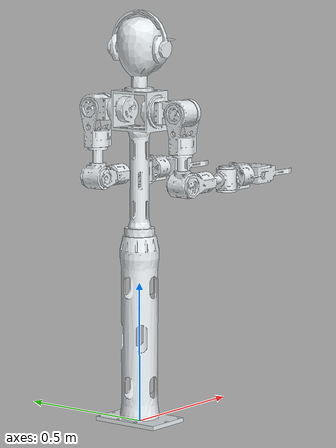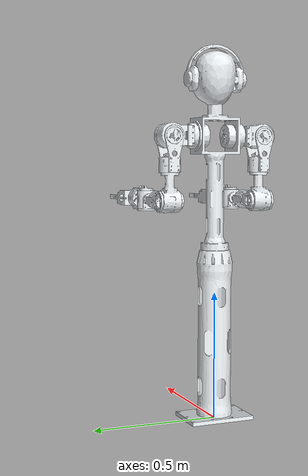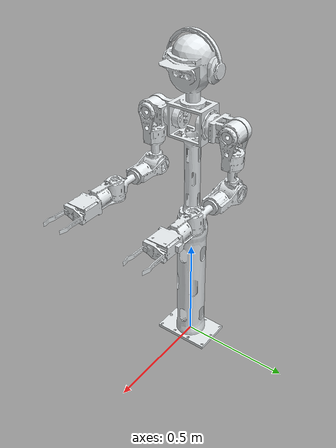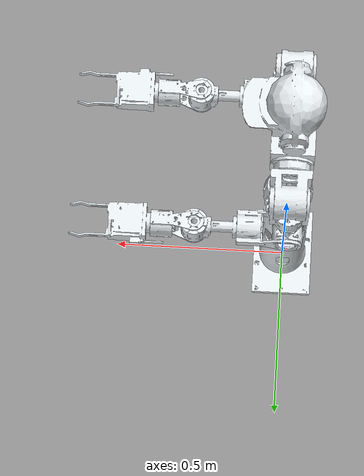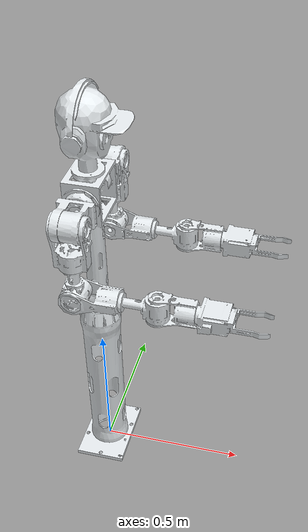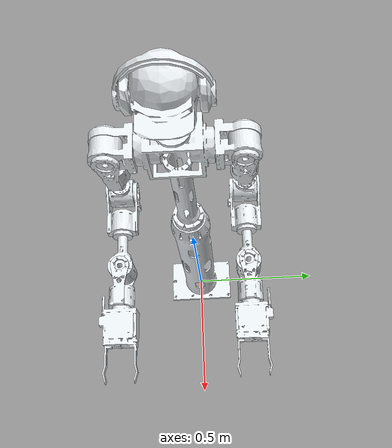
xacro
<?xml version="1.0"?>
<robot xmlns:xacro="http://www.ros.org/wiki/xacro" name="HRB3Q-LC">
  <xacro:arg name="gtn_library_path" default="$(find x1_coffee_integration)/vendor/gtn/libgxn_x64.so"/>
  <xacro:arg name="gtn_config_path" default="$(find x1_coffee_integration)/vendor/gtn/gtn_core1.cfg"/>
  <xacro:arg name="ecat_config_path" default="$(find x1_coffee_integration)/vendor/gtn/Gecat_15axis.eni"/>
  <xacro:arg name="initial_positions_file" default="$(find x1_coffee_integration)/config/initial_positions.yaml"/>
  <xacro:arg name="zero_offsets_file" default="$(find x1_coffee_integration)/config/zero_offsets.yaml"/>
  <xacro:arg name="motion_enabled" default="false"/>
  <xacro:arg name="drives_enabled" default="false"/>
  <xacro:arg name="hardware_profile" default="coffee_15_no_slide"/>
  <xacro:arg name="ethercat_ifname" default="eno1"/>
  <xacro:arg name="use_fake_hardware" default="false"/>
  <xacro:arg name="fake_sensor_commands" default="false"/>
  <!-- Reuses the established coffee geometry and selects real/fake ros2_control explicitly. -->
  <xacro:include filename="$(find arm_describle)/urdf/HRB3Q-LC.urdf"/>
  <xacro:include filename="$(find x1_coffee_ros2_control)/urdf/x1_coffee.ros2_control.xacro"/>
  <xacro:x1_coffee_ros2_control
    name="X1CoffeeRealSystem"
    use_fake_hardware="$(arg use_fake_hardware)"
    fake_sensor_commands="$(arg fake_sensor_commands)"
    gtn_library_path="$(arg gtn_library_path)"
    gtn_config_path="$(arg gtn_config_path)"
    ecat_config_path="$(arg ecat_config_path)"
    motion_enabled="$(arg motion_enabled)"
    drives_enabled="$(arg drives_enabled)"
    ethercat_ifname="$(arg ethercat_ifname)"
    hardware_profile="$(arg hardware_profile)"
    initial_positions_file="$(arg initial_positions_file)"
    zero_offsets_file="$(arg zero_offsets_file)"/>
</robot>

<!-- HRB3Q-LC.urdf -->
<robot
  name="HRB3Q-LC">
  <link name="dummy_root"/>
  <joint name="dummy_to_base" type="fixed">
    <parent link="dummy_root"/>
    <child link="Waist"/>
    <origin xyz="-1.83897483853e-08 0.000190909999114 0" rpy="0 0 -1.5707"/>
  </joint>
  <link
    name="Waist">
    <inertial>
      <origin
        xyz="-1.73788845931125E-06 4.09843367266127E-06 0.370335800513476"
        rpy="0 0 0" />
      <mass
        value="6.72739654383945" />
      <inertia
        ixx="0.128578003326412"
        ixy="-5.48683858854331E-07"
        ixz="-4.67345241719499E-07"
        iyy="0.133920864364366"
        iyz="9.59504113242137E-07"
        izz="0.0301155657919325" />
    </inertial>
    <visual>
      <origin
        xyz="0 0 0"
        rpy="0 0 0" />
      <geometry>
        <mesh
          filename="package://arm_describle/meshes0408/Waist.STL" />
      </geometry>
      <material
        name="">
        <color
          rgba="0.898039215686275 0.917647058823529 0.929411764705882 1" />
      </material>
    </visual>
    <collision>
      <origin
        xyz="0 0 0"
        rpy="0 0 0" />
      <geometry>
        <mesh
          filename="package://arm_describle/meshes0408/Waist.STL" />
      </geometry>
    </collision>
  </link>
  <link
    name="Body">
    <inertial>
      <origin
        xyz="4.47428434235259E-06 0.0054149465977954 0.486320399815704"
        rpy="0 0 0" />
      <mass
        value="8.16174511256408" />
      <inertia
        ixx="0.0252929798960977"
        ixy="-1.0950663478297E-06"
        ixz="-4.15230011161103E-08"
        iyy="0.0256844268395386"
        iyz="-0.000316649090724612"
        izz="0.0170534363864611" />
    </inertial>
    <visual>
      <origin
        xyz="0 0 0"
        rpy="0 0 0" />
      <geometry>
        <mesh
          filename="package://arm_describle/meshes0408/Body.STL" />
      </geometry>
      <material
        name="">
        <color
          rgba="0.898039215686275 0.917647058823529 0.929411764705882 1" />
      </material>
    </visual>
    <collision>
      <origin
        xyz="0 0 0"
        rpy="0 0 0" />
      <geometry>
        <mesh
          filename="package://arm_describle/meshes0408/Body.STL" />
      </geometry>
    </collision>
  </link>
  <joint
    name="Joint_Body"
    type="revolute">
    <origin
      xyz="0 0 0.677"
      rpy="0 0 0" />
    <parent
      link="Waist" />
    <child
      link="Body" />
    <axis
      xyz="0 0 1" />
    <limit
      lower="-6.2831852"
      upper="6.2831852"
      effort="50"
      velocity="3.14" />
  </joint>
  <link
    name="arml1">
    <inertial>
      <origin
        xyz="0.00580063706924105 9.87659063977908E-07 -0.0616956383818057"
        rpy="0 0 0" />
      <mass
        value="1.61566224015074" />
      <inertia
        ixx="0.00196030121495102"
        ixy="-1.38256276011268E-07"
        ixz="8.43357389675001E-06"
        iyy="0.00171741953492753"
        iyz="-6.25531450059514E-07"
        izz="0.00161972988952037" />
    </inertial>
    <visual>
      <origin
        xyz="0 0 0"
        rpy="0 0 0" />
      <geometry>
        <mesh
          filename="package://arm_describle/meshes0408/arml1.STL" />
      </geometry>
      <material
        name="">
        <color
          rgba="0.898039215686275 0.917647058823529 0.929411764705882 1" />
      </material>
    </visual>
    <collision>
      <origin
        xyz="0 0 0"
        rpy="0 0 0" />
      <geometry>
        <mesh
          filename="package://arm_describle/meshes0408/arml1.STL" />
      </geometry>
    </collision>
  </link>
  <joint
    name="Joint_l1"
    type="revolute">
    <origin
      xyz="-0.1165 0 0.438"
      rpy="1.5708 0 1.5708" />
    <parent
      link="Body" />
    <child
      link="arml1" />
    <axis
      xyz="0 0 -1" />
    <limit
      lower="-3.1415926"
      upper="3.1415926"
      effort="50"
      velocity="3.14" />
  </joint>
  <link
    name="arml2">
    <inertial>
      <origin
        xyz="-2.47059370016844E-05 -0.098325724547618 -0.0486467427626263"
        rpy="0 0 0" />
      <mass
        value="1.12419379759845" />
      <inertia
        ixx="0.00129406310927365"
        ixy="7.29198888563266E-07"
        ixz="5.6718333170603E-07"
        iyy="0.000889934404940177"
        iyz="-2.45973925912643E-06"
        izz="0.00132499952054773" />
    </inertial>
    <visual>
      <origin
        xyz="0 0 0"
        rpy="0 0 0" />
      <geometry>
        <mesh
          filename="package://arm_describle/meshes0408/arml2.STL" />
      </geometry>
      <material
        name="">
        <color
          rgba="0.898039215686275 0.917647058823529 0.929411764705882 1" />
      </material>
    </visual>
    <collision>
      <origin
        xyz="0 0 0"
        rpy="0 0 0" />
      <geometry>
        <mesh
          filename="package://arm_describle/meshes0408/arml2.STL" />
      </geometry>
    </collision>
  </link>
  <joint
    name="Joint_l2"
    type="revolute">
    <origin
      xyz="0.0505 0 -0.074"
      rpy="0 1.5708 0" />
    <parent
      link="arml1" />
    <child
      link="arml2" />
    <axis
      xyz="0 0 1" />
    <limit
      lower="-0.15"
      upper="3.1415926"
      effort="50"
      velocity="3.14" />
  </joint>
  <link
    name="arml3">
    <inertial>
      <origin
        xyz="0.00213058851469222 -2.46823754913583E-05 0.0935415880900397"
        rpy="0 0 0" />
      <mass
        value="1.08770349053362" />
      <inertia
        ixx="0.00102523835664429"
        ixy="-7.46843828352358E-07"
        ixz="-1.92281400485864E-05"
        iyy="0.000857662232457349"
        iyz="2.4377308015211E-07"
        izz="0.000775433253468383" />
    </inertial>
    <visual>
      <origin
        xyz="0 0 0"
        rpy="0 0 0" />
      <geometry>
        <mesh
          filename="package://arm_describle/meshes0408/arml3.STL" />
      </geometry>
      <material
        name="">
        <color
          rgba="0.898039215686275 0.917647058823529 0.929411764705882 1" />
      </material>
    </visual>
    <collision>
      <origin
        xyz="0 0 0"
        rpy="0 0 0" />
      <geometry>
        <mesh
          filename="package://arm_describle/meshes0408/arml3.STL" />
      </geometry>
    </collision>
  </link>
  <joint
    name="Joint_l3"
    type="revolute">
    <origin
      xyz="0 -0.1455 -0.0505"
      rpy="-1.5708 0 3.1416" />
    <parent
      link="arml2" />
    <child
      link="arml3" />
    <axis
      xyz="0 0 1" />
    <limit
      lower="-3.1415926"
      upper="3.1415926"
      effort="50"
      velocity="3.14" />
  </joint>
  <link
    name="arml4">
    <inertial>
      <origin
        xyz="0.0748563330855855 -5.36320221566911E-09 -0.0384400599653859"
        rpy="0 0 0" />
      <mass
        value="0.291945457019171" />
      <inertia
        ixx="0.000202239159805527"
        ixy="-1.44965626685055E-09"
        ixz="-5.59680436849159E-06"
        iyy="0.000549607386399966"
        iyz="-5.7929870298915E-12"
        izz="0.000551515013211078" />
    </inertial>
    <visual>
      <origin
        xyz="0 0 0"
        rpy="0 0 0" />
      <geometry>
        <mesh
          filename="package://arm_describle/meshes0408/arml4.STL" />
      </geometry>
      <material
        name="">
        <color
          rgba="0.898039215686275 0.917647058823529 0.929411764705882 1" />
      </material>
    </visual>
    <collision>
      <origin
        xyz="0 0 0"
        rpy="0 0 0" />
      <geometry>
        <mesh
          filename="package://arm_describle/meshes0408/arml4.STL" />
      </geometry>
    </collision>
  </link>
  <joint
    name="Joint_l4"
    type="revolute">
    <origin
      xyz="0.04 0 0.106"
      rpy="-1.5708 0 -1.5708" />
    <parent
      link="arml3" />
    <child
      link="arml4" />
    <axis
      xyz="0 0 1" />
    <limit
      lower="-1.5707963"
      upper="2.0943951"
      effort="50"
      velocity="3.14" />
  </joint>
  <link
    name="arml5">
    <inertial>
      <origin
        xyz="7.79053707808675E-05 0.0015129197114605 0.0976562210058013"
        rpy="0 0 0" />
      <mass
        value="0.842824039046815" />
      <inertia
        ixx="0.000594798314249688"
        ixy="7.24969454863584E-07"
        ixz="-1.39123716787588E-07"
        iyy="0.000663056683993988"
        iyz="-1.42528567733777E-05"
        izz="0.000488816760765804" />
    </inertial>
    <visual>
      <origin
        xyz="0 0 0"
        rpy="0 0 0" />
      <geometry>
        <mesh
          filename="package://arm_describle/meshes0408/arml5.STL" />
      </geometry>
      <material
        name="">
        <color
          rgba="0.898039215686275 0.917647058823529 0.929411764705882 1" />
      </material>
    </visual>
    <collision>
      <origin
        xyz="0 0 0"
        rpy="0 0 0" />
      <geometry>
        <mesh
          filename="package://arm_describle/meshes0408/arml5.STL" />
      </geometry>
    </collision>
  </link>
  <joint
    name="Joint_l5"
    type="revolute">
    <origin
      xyz="0.144 0 -0.04"
      rpy="0 1.5708 0" />
    <parent
      link="arml4" />
    <child
      link="arml5" />
    <axis
      xyz="0 0 1" />
    <limit
      lower="-3.1415926"
      upper="3.1415926"
      effort="50"
      velocity="3.14" />
  </joint>
  <link
    name="arml6">
    <inertial>
      <origin
        xyz="-3.87953496743532E-05 -0.0827611497194195 -0.0343557296795404"
        rpy="0 0 0" />
      <mass
        value="0.750716989226528" />
      <inertia
        ixx="0.000613907914614685"
        ixy="7.60951912815651E-07"
        ixz="5.75923757561481E-07"
        iyy="0.000487830847304463"
        iyz="3.93672362183647E-06"
        izz="0.000607071036365369" />
    </inertial>
    <visual>
      <origin
        xyz="0 0 0"
        rpy="0 0 0" />
      <geometry>
        <mesh
          filename="package://arm_describle/meshes0408/arml6.STL" />
      </geometry>
      <material
        name="">
        <color
          rgba="0.898039215686275 0.917647058823529 0.929411764705882 1" />
      </material>
    </visual>
    <collision>
      <origin
        xyz="0 0 0"
        rpy="0 0 0" />
      <geometry>
        <mesh
          filename="package://arm_describle/meshes0408/arml6.STL" />
      </geometry>
    </collision>
  </link>
  <joint
    name="Joint_l6"
    type="revolute">
    <origin
      xyz="0 0.036 0.113"
      rpy="-1.5708 0 0" />
    <parent
      link="arml5" />
    <child
      link="arml6" />
    <axis
      xyz="0 0 1" />
    <limit
      lower="-1.7453292"
      upper="1.7453292"
      effort="50"
      velocity="3.14" />
  </joint>
  <link
    name="arml7">
    <inertial>
      <origin
        xyz="0.00137872677447914 -2.10185572045996E-05 0.0594139048805935"
        rpy="0 0 0" />
      <mass
        value="1.53968802705119" />
      <inertia
        ixx="0.000614958585916074"
        ixy="1.04115297814328E-05"
        ixz="7.20653852709879E-08"
        iyy="0.00116160684632029"
        iyz="-1.14267122009406E-07"
        izz="0.00132160556724999" />
    </inertial>
    <visual>
      <origin
        xyz="0 0 0"
        rpy="0 0 0" />
      <geometry>
        <mesh
          filename="package://arm_describle/meshes0408/arml7.STL" />
      </geometry>
      <material
        name="">
        <color
          rgba="0.898039215686275 0.917647058823529 0.929411764705882 1" />
      </material>
    </visual>
    <collision>
      <origin
        xyz="0 0 0"
        rpy="0 0 0" />
      <geometry>
        <mesh
          filename="package://arm_describle/meshes0408/arml7.STL" />
      </geometry>
    </collision>
  </link>
  <joint
    name="Joint_l7"
    type="revolute">
    <origin
      xyz="0 -0.12 -0.036"
      rpy="1.5708 0 0" />
    <parent
      link="arml6" />
    <child
      link="arml7" />
    <axis
      xyz="0 0 1" />
    <limit
      lower="-6.2831853"
      upper="6.2831853"
      effort="50"
      velocity="3.14" />
  </joint>

  <link name="left_gripper_tcp"/>

  <joint name="left_end_eff" type="fixed">
    <parent link="arml7" />
    <child link="left_gripper_tcp" />
    <origin xyz="0 0 0.153" rpy="0 0 0" />
  </joint>

  <link
    name="armr1">
    <inertial>
      <origin
        xyz="0.00580063707987277 -2.8414561215051E-06 0.0616934278468561"
        rpy="0 0 0" />
      <mass
        value="1.61566224032513" />
      <inertia
        ixx="0.00196030121609016"
        ixy="-8.54412946097632E-07"
        ixz="-8.84705317059134E-06"
        iyy="0.00171816923667757"
        iyz="1.92687023734233E-07"
        izz="0.00161898018995245" />
    </inertial>
    <visual>
      <origin
        xyz="0 0 0"
        rpy="0 0 0" />
      <geometry>
        <mesh
          filename="package://arm_describle/meshes0408/armr1.STL" />
      </geometry>
      <material
        name="">
        <color
          rgba="0.898039215686275 0.917647058823529 0.929411764705882 1" />
      </material>
    </visual>
    <collision>
      <origin
        xyz="0 0 0"
        rpy="0 0 0" />
      <geometry>
        <mesh
          filename="package://arm_describle/meshes0408/armr1.STL" />
      </geometry>
    </collision>
  </link>
  <joint
    name="Joint_r1"
    type="revolute">
    <origin
      xyz="0.1165 0 0.438"
      rpy="1.5708 0 1.5708" />
    <parent
      link="Body" />
    <child
      link="armr1" />
    <axis
      xyz="0 0 1" />
    <limit
      lower="-3.1415926"
      upper="3.1415926"
      effort="50"
      velocity="3.14" />
  </joint>
  <link
    name="armr2">
    <inertial>
      <origin
        xyz="-2.47060097812446E-05 -0.0983257245428618 -0.0486467427829016"
        rpy="0 0 0" />
      <mass
        value="1.12419379715922" />
      <inertia
        ixx="0.00129406309674369"
        ixy="7.27419999573231E-07"
        ixz="5.67183982914884E-07"
        iyy="0.000889934416743309"
        iyz="-2.45973975427885E-06"
        izz="0.00132499952011308" />
    </inertial>
    <visual>
      <origin
        xyz="0 0 0"
        rpy="0 0 0" />
      <geometry>
        <mesh
          filename="package://arm_describle/meshes0408/armr2.STL" />
      </geometry>
      <material
        name="">
        <color
          rgba="0.898039215686275 0.917647058823529 0.929411764705882 1" />
      </material>
    </visual>
    <collision>
      <origin
        xyz="0 0 0"
        rpy="0 0 0" />
      <geometry>
        <mesh
          filename="package://arm_describle/meshes0408/armr2.STL" />
      </geometry>
    </collision>
  </link>
  <joint
    name="Joint_r2"
    type="revolute">
    <origin
      xyz="0.0505 0 0.074"
      rpy="0 1.5708 0" />
    <parent
      link="armr1" />
    <child
      link="armr2" />
    <axis
      xyz="0 0 1" />
    <limit
      lower="-3.1415926"
      upper="0.15"
      effort="50"
      velocity="3.14" />
  </joint>
  <link
    name="armr3">
    <inertial>
      <origin
        xyz="-0.00213058851915929 2.46823450066325E-05 0.0935415880247177"
        rpy="0 0 0" />
      <mass
        value="1.08770349080251" />
      <inertia
        ixx="0.0010252383571699"
        ixy="-7.46844455069472E-07"
        ixz="1.9228138773624E-05"
        iyy="0.000857662233743101"
        iyz="-2.43772306395215E-07"
        izz="0.000775433252665538" />
    </inertial>
    <visual>
      <origin
        xyz="0 0 0"
        rpy="0 0 0" />
      <geometry>
        <mesh
          filename="package://arm_describle/meshes0408/armr3.STL" />
      </geometry>
      <material
        name="">
        <color
          rgba="0.898039215686275 0.917647058823529 0.929411764705882 1" />
      </material>
    </visual>
    <collision>
      <origin
        xyz="0 0 0"
        rpy="0 0 0" />
      <geometry>
        <mesh
          filename="package://arm_describle/meshes0408/armr3.STL" />
      </geometry>
    </collision>
  </link>
  <joint
    name="Joint_r3"
    type="revolute">
    <origin
      xyz="0 -0.1455 -0.0505"
      rpy="-1.5708 0 -3.1416" />
    <parent
      link="armr2" />
    <child
      link="armr3" />
    <axis
      xyz="0 0 1" />
    <limit
      lower="-3.1415926"
      upper="3.1415926"
      effort="50"
      velocity="3.14" />
  </joint>
  <link
    name="armr4">
    <inertial>
      <origin
        xyz="-0.0748558086239512 -4.49695369830749E-09 0.0384400601677456"
        rpy="0 0 0" />
      <mass
        value="0.29194545605031" />
      <inertia
        ixx="0.000202239164385698"
        ixy="2.62209332349811E-11"
        ixz="-5.59680436805108E-06"
        iyy="0.000549607381699348"
        iyz="5.80669909426674E-12"
        izz="0.000551515013126759" />
    </inertial>
    <visual>
      <origin
        xyz="0 0 0"
        rpy="0 0 0" />
      <geometry>
        <mesh
          filename="package://arm_describle/meshes0408/armr4.STL" />
      </geometry>
      <material
        name="">
        <color
          rgba="0.898039215686275 0.917647058823529 0.929411764705882 1" />
      </material>
    </visual>
    <collision>
      <origin
        xyz="0 0 0"
        rpy="0 0 0" />
      <geometry>
        <mesh
          filename="package://arm_describle/meshes0408/armr4.STL" />
      </geometry>
    </collision>
  </link>
  <joint
    name="Joint_r4"
    type="revolute">
    <origin
      xyz="-0.04 0 0.106"
      rpy="1.5708 0 1.5708" />
    <parent
      link="armr3" />
    <child
      link="armr4" />
    <axis
      xyz="0 0 -1" />
    <limit
      lower="-2.0943951"
      upper="1.5707963"
      effort="50"
      velocity="3.14" />
  </joint>
  <link
    name="armr5">
    <inertial>
      <origin
        xyz="-6.9718438756583E-06 0.0015740328830357 0.0976593657680329"
        rpy="0 0 0" />
      <mass
        value="0.841032453778833" />
      <inertia
        ixx="0.000593706194723659"
        ixy="-1.04358508871097E-07"
        ixz="3.69354807583659E-07"
        iyy="0.000663013861172857"
        iyz="-1.37552740906956E-05"
        izz="0.000489840081312858" />
    </inertial>
    <visual>
      <origin
        xyz="0 0 0"
        rpy="0 0 0" />
      <geometry>
        <mesh
          filename="package://arm_describle/meshes0408/armr5.STL" />
      </geometry>
      <material
        name="">
        <color
          rgba="0.898039215686275 0.917647058823529 0.929411764705882 1" />
      </material>
    </visual>
    <collision>
      <origin
        xyz="0 0 0"
        rpy="0 0 0" />
      <geometry>
        <mesh
          filename="package://arm_describle/meshes0408/armr5.STL" />
      </geometry>
    </collision>
  </link>
  <joint
    name="Joint_r5"
    type="revolute">
    <origin
      xyz="-0.144 0 0.04"
      rpy="3.1416 1.5708 0" />
    <parent
      link="armr4" />
    <child
      link="armr5" />
    <axis
      xyz="0 0 1" />
    <limit
      lower="-3.1415926"
      upper="3.1415926"
      effort="50"
      velocity="3.14" />
  </joint>
  <link
    name="armr6">
    <inertial>
      <origin
        xyz="1.38231033283698E-06 -0.0827611497194189 -0.0343123043702178"
        rpy="0 0 0" />
      <mass
        value="0.75071698922654" />
      <inertia
        ixx="0.000613420330037972"
        ixy="2.32559881355643E-08"
        ixz="-5.03010033933128E-07"
        iyy="0.000487830847304468"
        iyz="3.02649310239814E-06"
        izz="0.00060755862094211" />
    </inertial>
    <visual>
      <origin
        xyz="0 0 0"
        rpy="0 0 0" />
      <geometry>
        <mesh
          filename="package://arm_describle/meshes0408/armr6.STL" />
      </geometry>
      <material
        name="">
        <color
          rgba="0.898039215686275 0.917647058823529 0.929411764705882 1" />
      </material>
    </visual>
    <collision>
      <origin
        xyz="0 0 0"
        rpy="0 0 0" />
      <geometry>
        <mesh
          filename="package://arm_describle/meshes0408/armr6.STL" />
      </geometry>
    </collision>
  </link>
  <joint
    name="Joint_r6"
    type="revolute">
    <origin
      xyz="0 0.036 0.113"
      rpy="-1.5708 0 0" />
    <parent
      link="armr5" />
    <child
      link="armr6" />
    <axis
      xyz="0 0 1" />
    <limit
      lower="-1.7453292"
      upper="1.7453292"
      effort="50"
      velocity="3.14" />
  </joint>
  <link
    name="armr7">
    <inertial>
      <origin
        xyz="-0.00137872677447762 2.10185572047106E-05 0.0594139048805939"
        rpy="0 0 0" />
      <mass
        value="1.53968802705119" />
      <inertia
        ixx="0.000614958585916072"
        ixy="1.04115297814326E-05"
        ixz="-7.20653852642896E-08"
        iyy="0.00116160684632029"
        iyz="1.14267122008994E-07"
        izz="0.00132160556724999" />
    </inertial>
    <visual>
      <origin
        xyz="0 0 0"
        rpy="0 0 0" />
      <geometry>
        <mesh
          filename="package://arm_describle/meshes0408/armr7.STL" />
      </geometry>
      <material
        name="">
        <color
          rgba="0.898039215686275 0.917647058823529 0.929411764705882 1" />
      </material>
    </visual>
    <collision>
      <origin
        xyz="0 0 0"
        rpy="0 0 0" />
      <geometry>
        <mesh
          filename="package://arm_describle/meshes0408/armr7.STL" />
      </geometry>
    </collision>
  </link>
  <joint
    name="Joint_r7"
    type="revolute">
    <origin
      xyz="0 -0.12 -0.036"
      rpy="1.5708 0 0" />
    <parent
      link="armr6" />
    <child
      link="armr7" />
    <axis
      xyz="0 0 1" />
    <limit
      lower="-6.2831853"
      upper="6.2831853"
      effort="50"
      velocity="3.14" />
  </joint>

  <link name="right_gripper_tcp"/>

  <joint name="right_end_eff" type="fixed">
    <parent link="armr7" />
    <child link="right_gripper_tcp" />
    <origin xyz="0 0 0.155" rpy="0 0 0" />
  </joint>

</robot>
